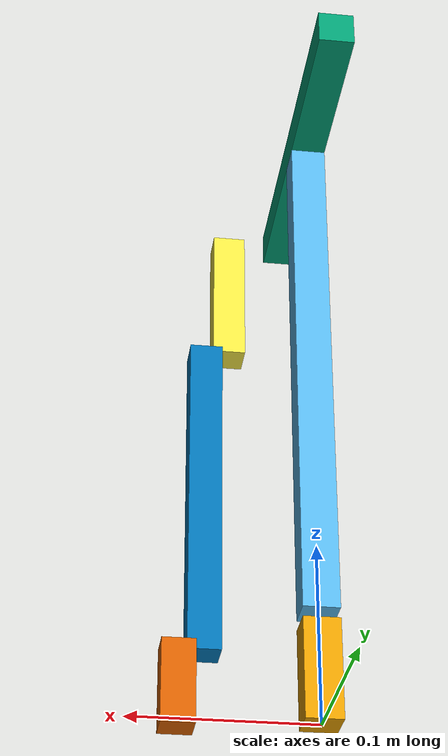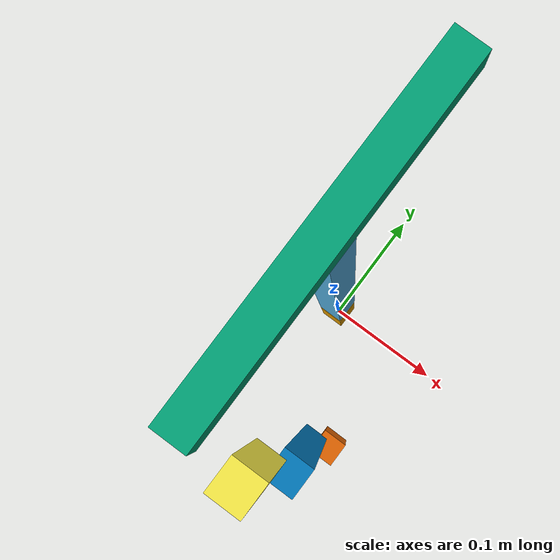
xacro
<?xml version="1.0"?>
<robot xmlns:xacro="http://www.ros.org/wiki/xacro" name="hubert">
    <xacro:arg name="initial_positions_file" default="initial_positions.yaml" />

    <!-- Import hubert urdf file -->
    <xacro:include filename="$(find move_ee)/move_ee/urdf/hubert.urdf" />

    <!-- Import control_xacro -->
    <xacro:include filename="hubert.ros2_control.xacro" />

    <xacro:hubert_ros2_control name="FakeSystem" initial_positions_file="$(arg initial_positions_file)"/>

</robot>

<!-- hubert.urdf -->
<robot name="hubert">

  <link name="base_link">
    <visual>
      <geometry>
        <box size="0.055 0.02 0.02"/>
      </geometry>
      <origin rpy="0 1.57075 0" xyz=" 0 0 0.0275"/>
    </visual>
    <collision>
	    <geometry>
		    <box size="0.055 0.02 0.02"/>
	    </geometry>
	    <origin rpy="0 1.57075 0" xyz=" 0 0 0.0275"/>
    </collision>
  </link>

  <link name="robot_body">
    <visual>
      <geometry>
        <box size="0.315 0.02 0.02"/>
      </geometry>
      <origin rpy="0 1.57075 0" xyz="0 0 0.163"/>
    </visual>
    <collision>
      <geometry>
        <box size="0.315 0.02 0.02"/>
      </geometry>
      <origin rpy="0 1.57075 0" xyz="0 0 0.163"/>
    </collision>
  </link>

  <link name="robot_shoulder">
    <visual>
      <geometry>
        <box size="0.216 0.02 0.02"/>
      </geometry>
      <origin rpy=" 0 0 1.57075" xyz="0 0 0"/>
    </visual>
    <collision>
      <geometry>
        <box size="0.216 0.02 0.02"/>
      </geometry>
      <origin rpy=" 0 0 1.57075" xyz="0 0 0"/>
    </collision>
  </link>

  <link name="robot_arm">
    <visual>
      <geometry>
        <box size="0.088 0.02 0.02"/>
      </geometry>
      <origin rpy=" 0 0 1.57075" xyz="0 -0.044 0"/>
    </visual>
    <collision>
    <geometry>
        <box size="0.088 0.02 0.02"/>
      </geometry>
      <origin rpy=" 0 0 1.57075" xyz="0 -0.044 0"/>
    </collision>
  </link>

  <link name="robot_elbow">
    <visual>
      <geometry>
        <box size="0.204 0.02 0.02"/>
      </geometry>
      <origin rpy=" 0 0 1.57075" xyz="0 -.102 0"/>
    </visual>
    <collision>
    <geometry>
        <box size="0.204 0.02 0.02"/>
      </geometry>
      <origin rpy=" 0 0 1.57075" xyz="0 -.102 0"/>
    </collision>
  </link>

  <link name="end_effector">
    <visual>
      <geometry>
        <box size="0.05 0.02 0.02"/>
      </geometry>
      <origin rpy=" 0 0 1.57075" xyz="0 -.075 0"/>
    </visual>
    <collision>
    <geometry>
        <box size="0.05 0.02 0.02"/>
      </geometry>
      <origin rpy=" 0 0 1.57075" xyz="0 -.075 0"/>
    </collision>
  </link>

  <joint name="base_joint" type="revolute">
    <axis xyz="0 0 1"/>
    <limit effort="1000.0" lower="0" upper="3.14" velocity="0.5"/>
    <parent link="base_link"/>
    <child link="robot_body"/>
    <origin xyz="0 0 0.055"/>
  </joint>

  <joint name="body_to_shoulder" type="fixed">
    <parent link="robot_body"/>
    <child link="robot_shoulder"/>
    <origin xyz="0 0 0.315"/>
  </joint>

  <joint name="shoulder_joint" type="revolute">
    <axis xyz="0 0 1"/>
    <limit effort="1000.0" lower="0" upper="3.14" velocity="0.5"/>
    <parent link="robot_shoulder"/>
    <child link="robot_arm"/>
    <origin rpy=" 1.57075 0 0" xyz="0.034 -0.108 0"/>
  </joint>

  <joint name="elbow_joint" type="revolute">
    <axis xyz="0 0 1"/>
    <limit effort="1000.0" lower="-0" upper="1.57075" velocity="0.5"/>
    <parent link="robot_arm"/>
    <child link="robot_elbow"/>
    <origin rpy=" 0 0 0" xyz="0.015 -0.088 -0.005"/>
  </joint>

  <joint name="end_effector_joint" type="fixed">
    <parent link="robot_elbow"/>
    <child link="end_effector"/>
    <origin rpy=" 0 0 0" xyz="0.015 -0.15 -0.005"/>
  </joint>
</robot>
